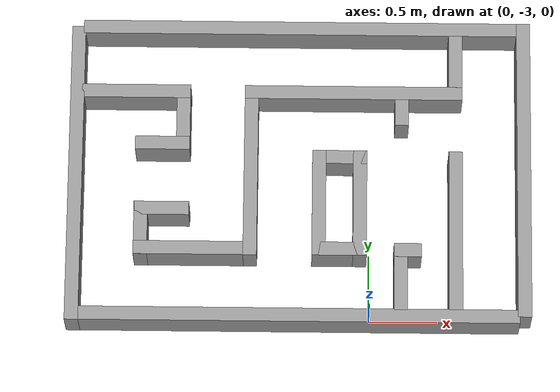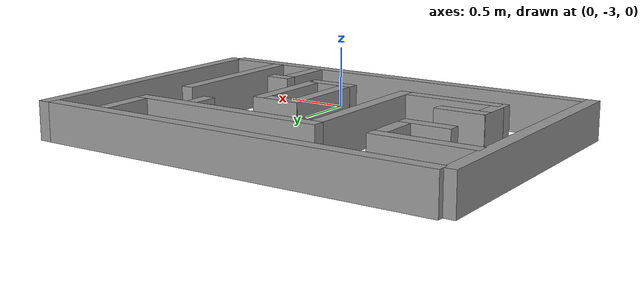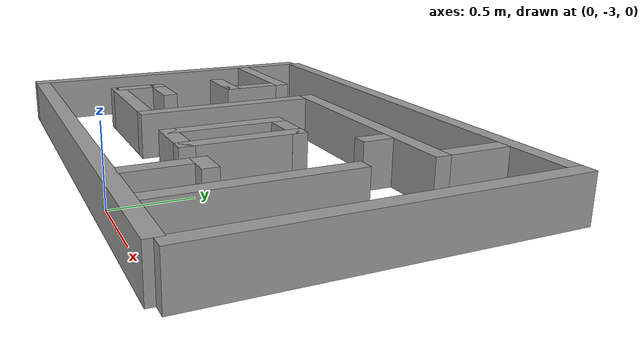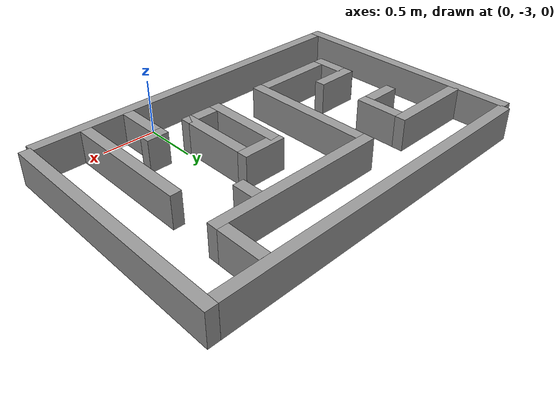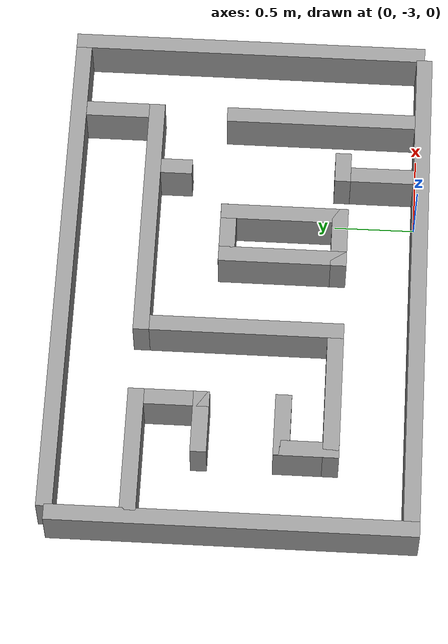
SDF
<?xml version='1.0'?>
<sdf version='1.7'>
  <model name='world'>
    <pose>-0.512877 -1.53962 0 0 -0 0</pose>
    <link name='Wall_0'>
      <collision name='Wall_0_Collision'>
        <geometry>
          <box>
            <size>3.2 0.1 0.3</size>
          </box>
        </geometry>
        <pose>0 0 0.15 0 -0 0</pose>
      </collision>
      <visual name='Wall_0_Visual'>
        <pose>0 0 0.15 0 -0 0</pose>
        <geometry>
          <box>
            <size>3.2 0.1 0.3</size>
          </box>
        </geometry>
        <material>
          <script>
            <uri>file://media/materials/scripts/gazebo.material</uri>
            <name>Gazebo/Grey</name>
          </script>
          <ambient>1 1 1 1</ambient>
        </material>
        <meta>
          <layer>0</layer>
        </meta>
      </visual>
      <pose>-0.006855 0.709928 0 0 -0 3.14159</pose>
    </link>
    <link name='Wall_12'>
      <collision name='Wall_12_Collision'>
        <geometry>
          <box>
            <size>0.8 0.1 0.3</size>
          </box>
        </geometry>
        <pose>0 0 0.15 0 -0 0</pose>
      </collision>
      <visual name='Wall_12_Visual'>
        <pose>0 0 0.15 0 -0 0</pose>
        <geometry>
          <box>
            <size>0.8 0.1 0.3</size>
          </box>
        </geometry>
        <material>
          <script>
            <uri>file://media/materials/scripts/gazebo.material</uri>
            <name>Gazebo/Grey</name>
          </script>
          <ambient>1 1 1 1</ambient>
        </material>
        <meta>
          <layer>0</layer>
        </meta>
      </visual>
      <pose>-1.20764 0.210026 0 0 -0 0</pose>
    </link>
    <link name='Wall_14'>
      <collision name='Wall_14_Collision'>
        <geometry>
          <box>
            <size>0.4 0.1 0.3</size>
          </box>
        </geometry>
        <pose>0 0 0.15 0 -0 0</pose>
      </collision>
      <visual name='Wall_14_Visual'>
        <pose>0 0 0.15 0 -0 0</pose>
        <geometry>
          <box>
            <size>0.4 0.1 0.3</size>
          </box>
        </geometry>
        <material>
          <script>
            <uri>file://media/materials/scripts/gazebo.material</uri>
            <name>Gazebo/Grey</name>
          </script>
          <ambient>1 1 1 1</ambient>
        </material>
        <meta>
          <layer>0</layer>
        </meta>
      </visual>
      <pose>-1.0077 -0.189643 0 0 -0 0</pose>
    </link>
    <link name='Wall_16'>
      <collision name='Wall_16_Collision'>
        <geometry>
          <box>
            <size>0.4 0.1 0.3</size>
          </box>
        </geometry>
        <pose>0 0 0.15 0 -0 0</pose>
      </collision>
      <visual name='Wall_16_Visual'>
        <pose>0 0 0.15 0 -0 0</pose>
        <geometry>
          <box>
            <size>0.4 0.1 0.3</size>
          </box>
        </geometry>
        <material>
          <script>
            <uri>file://media/materials/scripts/gazebo.material</uri>
            <name>Gazebo/Grey</name>
          </script>
          <ambient>1 1 1 1</ambient>
        </material>
        <meta>
          <layer>0</layer>
        </meta>
      </visual>
      <pose>-1.00517 -0.690603 0 0 -0 0</pose>
    </link>
    <link name='Wall_18'>
      <collision name='Wall_18_Collision'>
        <geometry>
          <box>
            <size>0.4 0.1 0.3</size>
          </box>
        </geometry>
        <pose>0 0 0.15 0 -0 0</pose>
      </collision>
      <visual name='Wall_18_Visual'>
        <pose>0 0 0.15 0 -0 0</pose>
        <geometry>
          <box>
            <size>0.4 0.1 0.3</size>
          </box>
        </geometry>
        <material>
          <script>
            <uri>file://media/materials/scripts/gazebo.material</uri>
            <name>Gazebo/Grey</name>
          </script>
          <ambient>1 1 1 1</ambient>
        </material>
        <meta>
          <layer>0</layer>
        </meta>
      </visual>
      <pose>-0.857658 -0.039639 0 0 -0 -1.5708</pose>
    </link>
    <link name='Wall_2'>
      <collision name='Wall_2_Collision'>
        <geometry>
          <box>
            <size>3.2 0.1 0.3</size>
          </box>
        </geometry>
        <pose>0 0 0.15 0 -0 0</pose>
      </collision>
      <visual name='Wall_2_Visual'>
        <pose>0 0 0.15 0 -0 0</pose>
        <geometry>
          <box>
            <size>3.2 0.1 0.3</size>
          </box>
        </geometry>
        <material>
          <script>
            <uri>file://media/materials/scripts/gazebo.material</uri>
            <name>Gazebo/Grey</name>
          </script>
          <ambient>1 1 1 1</ambient>
        </material>
        <meta>
          <layer>0</layer>
        </meta>
      </visual>
      <pose>0.006105 -1.48933 0 0 -0 0</pose>
    </link>
    <link name='Wall_20'>
      <collision name='Wall_20_Collision'>
        <geometry>
          <box>
            <size>0.4 0.1 0.3</size>
          </box>
        </geometry>
        <pose>0 0 0.15 0 -0 0</pose>
      </collision>
      <visual name='Wall_20_Visual'>
        <pose>0 0 0.15 0 -0 0</pose>
        <geometry>
          <box>
            <size>0.4 0.1 0.3</size>
          </box>
        </geometry>
        <material>
          <script>
            <uri>file://media/materials/scripts/gazebo.material</uri>
            <name>Gazebo/Grey</name>
          </script>
          <ambient>1 1 1 1</ambient>
        </material>
        <meta>
          <layer>0</layer>
        </meta>
      </visual>
      <pose>1.14253 0.459596 0 0 -0 -1.5708</pose>
    </link>
    <link name='Wall_22'>
      <collision name='Wall_22_Collision'>
        <geometry>
          <box>
            <size>0.8 0.1 0.3</size>
          </box>
        </geometry>
        <pose>0 0 0.15 0 -0 0</pose>
      </collision>
      <visual name='Wall_22_Visual'>
        <pose>0 0 0.15 0 -0 0</pose>
        <geometry>
          <box>
            <size>0.8 0.1 0.3</size>
          </box>
        </geometry>
        <material>
          <script>
            <uri>file://media/materials/scripts/gazebo.material</uri>
            <name>Gazebo/Grey</name>
          </script>
          <ambient>1 1 1 1</ambient>
        </material>
        <meta>
          <layer>0</layer>
        </meta>
      </visual>
      <pose>-0.807144 -0.990415 0 0 -0 0</pose>
    </link>
    <link name='Wall_24'>
      <collision name='Wall_24_Collision'>
        <geometry>
          <box>
            <size>0.4 0.1 0.3</size>
          </box>
        </geometry>
        <pose>0 0 0.15 0 -0 0</pose>
      </collision>
      <visual name='Wall_24_Visual'>
        <pose>0 0 0.15 0 -0 0</pose>
        <geometry>
          <box>
            <size>0.4 0.1 0.3</size>
          </box>
        </geometry>
        <material>
          <script>
            <uri>file://media/materials/scripts/gazebo.material</uri>
            <name>Gazebo/Grey</name>
          </script>
          <ambient>1 1 1 1</ambient>
        </material>
        <meta>
          <layer>0</layer>
        </meta>
      </visual>
      <pose>0.293469 -0.287971 0 0 -0 0</pose>
    </link>
    <link name='Wall_28'>
      <collision name='Wall_28_Collision'>
        <geometry>
          <box>
            <size>1.6 0.1 0.3</size>
          </box>
        </geometry>
        <pose>0 0 0.15 0 -0 0</pose>
      </collision>
      <visual name='Wall_28_Visual'>
        <pose>0 0 0.15 0 -0 0</pose>
        <geometry>
          <box>
            <size>1.6 0.1 0.3</size>
          </box>
        </geometry>
        <material>
          <script>
            <uri>file://media/materials/scripts/gazebo.material</uri>
            <name>Gazebo/Grey</name>
          </script>
          <ambient>1 1 1 1</ambient>
        </material>
        <meta>
          <layer>0</layer>
        </meta>
      </visual>
      <pose>0.392556 0.209532 0 0 -0 0</pose>
    </link>
    <link name='Wall_30'>
      <collision name='Wall_30_Collision'>
        <geometry>
          <box>
            <size>1.2 0.1 0.3</size>
          </box>
        </geometry>
        <pose>0 0 0.15 0 -0 0</pose>
      </collision>
      <visual name='Wall_30_Visual'>
        <pose>0 0 0.15 0 -0 0</pose>
        <geometry>
          <box>
            <size>1.2 0.1 0.3</size>
          </box>
        </geometry>
        <material>
          <script>
            <uri>file://media/materials/scripts/gazebo.material</uri>
            <name>Gazebo/Grey</name>
          </script>
          <ambient>1 1 1 1</ambient>
        </material>
        <meta>
          <layer>0</layer>
        </meta>
      </visual>
      <pose>-0.357471 -0.440379 0 0 -0 -1.5708</pose>
    </link>
    <link name='Wall_32'>
      <collision name='Wall_32_Collision'>
        <geometry>
          <box>
            <size>0.4 0.1 0.3</size>
          </box>
        </geometry>
        <pose>0 0 0.15 0 -0 0</pose>
      </collision>
      <visual name='Wall_32_Visual'>
        <pose>0 0 0.15 0 -0 0</pose>
        <geometry>
          <box>
            <size>0.4 0.1 0.3</size>
          </box>
        </geometry>
        <material>
          <script>
            <uri>file://media/materials/scripts/gazebo.material</uri>
            <name>Gazebo/Grey</name>
          </script>
          <ambient>1 1 1 1</ambient>
        </material>
        <meta>
          <layer>0</layer>
        </meta>
      </visual>
      <pose>-1.15696 -0.840615 0 0 -0 -1.5708</pose>
    </link>
    <link name='Wall_34'>
      <collision name='Wall_34_Collision'>
        <geometry>
          <box>
            <size>0.2 0.1 0.3</size>
          </box>
        </geometry>
        <pose>0 0 0.15 0 -0 0</pose>
      </collision>
      <visual name='Wall_34_Visual'>
        <pose>0 0 0.15 0 -0 0</pose>
        <geometry>
          <box>
            <size>0.2 0.1 0.3</size>
          </box>
        </geometry>
        <material>
          <script>
            <uri>file://media/materials/scripts/gazebo.material</uri>
            <name>Gazebo/Grey</name>
          </script>
          <ambient>1 1 1 1</ambient>
        </material>
        <meta>
          <layer>0</layer>
        </meta>
      </visual>
      <pose>0.747998 0.060475 0 0 -0 -1.5708</pose>
    </link>
    <link name='Wall_36'>
      <collision name='Wall_36_Collision'>
        <geometry>
          <box>
            <size>0.8 0.1 0.3</size>
          </box>
        </geometry>
        <pose>0 0 0.15 0 -0 0</pose>
      </collision>
      <visual name='Wall_36_Visual'>
        <pose>0 0 0.15 0 -0 0</pose>
        <geometry>
          <box>
            <size>0.8 0.1 0.3</size>
          </box>
        </geometry>
        <material>
          <script>
            <uri>file://media/materials/scripts/gazebo.material</uri>
            <name>Gazebo/Grey</name>
          </script>
          <ambient>1 1 1 1</ambient>
        </material>
        <meta>
          <layer>0</layer>
        </meta>
      </visual>
      <pose>0.14334 -0.638277 0 0 -0 -1.5708</pose>
    </link>
    <link name='Wall_38'>
      <collision name='Wall_38_Collision'>
        <geometry>
          <box>
            <size>0.4 0.1 0.3</size>
          </box>
        </geometry>
        <pose>0 0 0.15 0 -0 0</pose>
      </collision>
      <visual name='Wall_38_Visual'>
        <pose>0 0 0.15 0 -0 0</pose>
        <geometry>
          <box>
            <size>0.4 0.1 0.3</size>
          </box>
        </geometry>
        <material>
          <script>
            <uri>file://media/materials/scripts/gazebo.material</uri>
            <name>Gazebo/Grey</name>
          </script>
          <ambient>1 1 1 1</ambient>
        </material>
        <meta>
          <layer>0</layer>
        </meta>
      </visual>
      <pose>0.293172 -0.988301 0 0 -0 0</pose>
    </link>
    <link name='Wall_40'>
      <collision name='Wall_40_Collision'>
        <geometry>
          <box>
            <size>0.8 0.1 0.3</size>
          </box>
        </geometry>
        <pose>0 0 0.15 0 -0 0</pose>
      </collision>
      <visual name='Wall_40_Visual'>
        <pose>0 0 0.15 0 -0 0</pose>
        <geometry>
          <box>
            <size>0.8 0.1 0.3</size>
          </box>
        </geometry>
        <material>
          <script>
            <uri>file://media/materials/scripts/gazebo.material</uri>
            <name>Gazebo/Grey</name>
          </script>
          <ambient>1 1 1 1</ambient>
        </material>
        <meta>
          <layer>0</layer>
        </meta>
      </visual>
      <pose>0.443098 -0.638508 0 0 -0 -1.5708</pose>
    </link>
    <link name='Wall_42'>
      <collision name='Wall_42_Collision'>
        <geometry>
          <box>
            <size>1.2 0.1 0.3</size>
          </box>
        </geometry>
        <pose>0 0 0.15 0 -0 0</pose>
      </collision>
      <visual name='Wall_42_Visual'>
        <pose>0 0 0.15 0 -0 0</pose>
        <geometry>
          <box>
            <size>1.2 0.1 0.3</size>
          </box>
        </geometry>
        <material>
          <script>
            <uri>file://media/materials/scripts/gazebo.material</uri>
            <name>Gazebo/Grey</name>
          </script>
          <ambient>1 1 1 1</ambient>
        </material>
        <meta>
          <layer>0</layer>
        </meta>
      </visual>
      <pose>1.14308 -0.840196 0 0 -0 -1.5708</pose>
    </link>
    <link name='Wall_46'>
      <collision name='Wall_46_Collision'>
        <geometry>
          <box>
            <size>0.2 0.1 0.3</size>
          </box>
        </geometry>
        <pose>0 0 0.15 0 -0 0</pose>
      </collision>
      <visual name='Wall_46_Visual'>
        <pose>0 0 0.15 0 -0 0</pose>
        <geometry>
          <box>
            <size>0.2 0.1 0.3</size>
          </box>
        </geometry>
        <material>
          <script>
            <uri>file://media/materials/scripts/gazebo.material</uri>
            <name>Gazebo/Grey</name>
          </script>
          <ambient>1 1 1 1</ambient>
        </material>
        <meta>
          <layer>0</layer>
        </meta>
      </visual>
      <pose>0.793484 -0.993695 0 0 -0 0</pose>
    </link>
    <link name='Wall_48'>
      <collision name='Wall_48_Collision'>
        <geometry>
          <box>
            <size>0.4 0.1 0.3</size>
          </box>
        </geometry>
        <pose>0 0 0.15 0 -0 0</pose>
      </collision>
      <visual name='Wall_48_Visual'>
        <pose>0 0 0.15 0 -0 0</pose>
        <geometry>
          <box>
            <size>0.4 0.1 0.3</size>
          </box>
        </geometry>
        <material>
          <script>
            <uri>file://media/materials/scripts/gazebo.material</uri>
            <name>Gazebo/Grey</name>
          </script>
          <ambient>1 1 1 1</ambient>
        </material>
        <meta>
          <layer>0</layer>
        </meta>
      </visual>
      <pose>0.743766 -1.24383 0 0 -0 -1.5708</pose>
    </link>
    <link name='Wall_6'>
      <collision name='Wall_6_Collision'>
        <geometry>
          <box>
            <size>2.25 0.1 0.3</size>
          </box>
        </geometry>
        <pose>0 0 0.15 0 -0 0</pose>
      </collision>
      <visual name='Wall_6_Visual'>
        <pose>0 0 0.15 0 -0 0</pose>
        <geometry>
          <box>
            <size>2.25 0.1 0.3</size>
          </box>
        </geometry>
        <material>
          <script>
            <uri>file://media/materials/scripts/gazebo.material</uri>
            <name>Gazebo/Grey</name>
          </script>
          <ambient>1 1 1 1</ambient>
        </material>
        <meta>
          <layer>0</layer>
        </meta>
      </visual>
      <pose>-1.64292 -0.414623 0 0 -0 -1.5708</pose>
    </link>
    <link name='Wall_8'>
      <collision name='Wall_8_Collision'>
        <geometry>
          <box>
            <size>2.25 0.1 0.3</size>
          </box>
        </geometry>
        <pose>0 0 0.15 0 -0 0</pose>
      </collision>
      <visual name='Wall_8_Visual'>
        <pose>0 0 0.15 0 -0 0</pose>
        <geometry>
          <box>
            <size>2.25 0.1 0.3</size>
          </box>
        </geometry>
        <material>
          <script>
            <uri>file://media/materials/scripts/gazebo.material</uri>
            <name>Gazebo/Grey</name>
          </script>
          <ambient>1 1 1 1</ambient>
        </material>
        <meta>
          <layer>0</layer>
        </meta>
      </visual>
      <pose>1.64292 -0.365276 0 0 -0 -1.5708</pose>
    </link>
    <static>1</static>
  </model>
</sdf>
